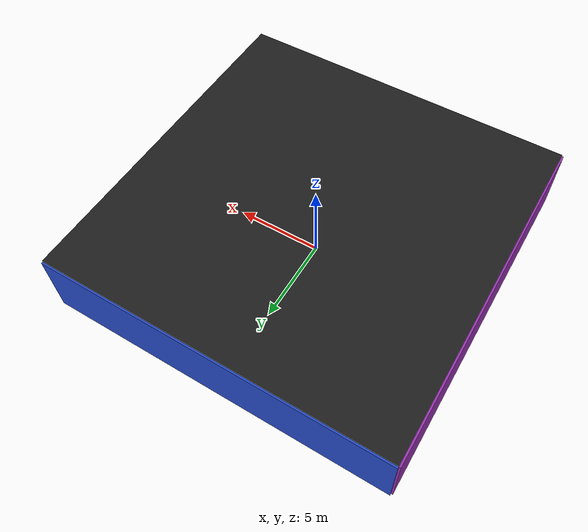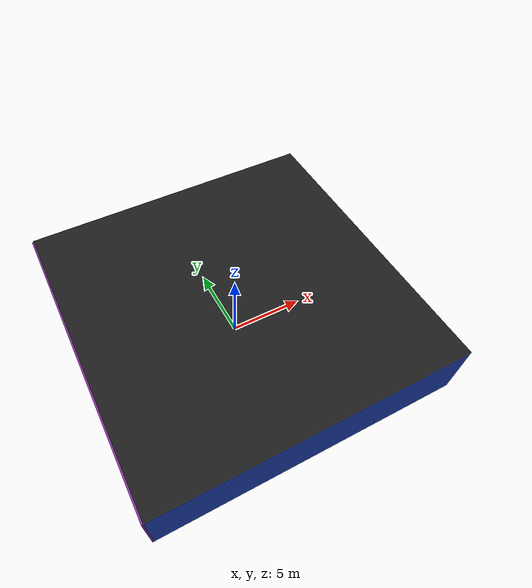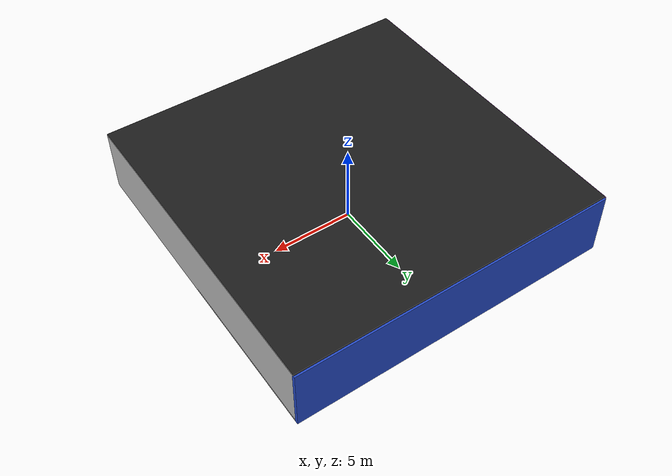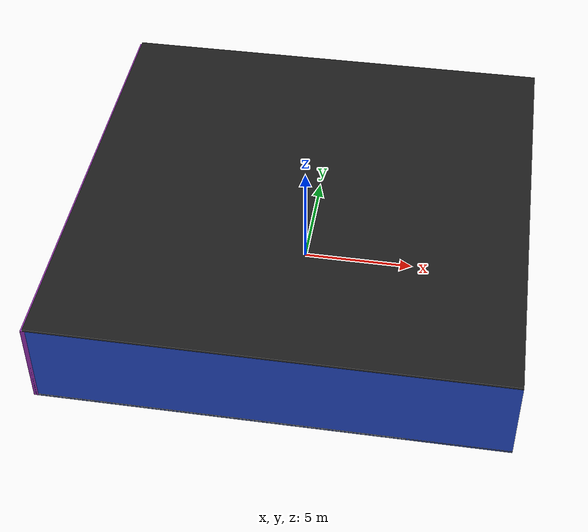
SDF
<sdf version="1.4">
 <world name="default">
  <physics type="ode">
   <max_step_size>0.001</max_step_size>
   <real_time_factor>1</real_time_factor>
   <real_time_update_rate>1000</real_time_update_rate>
   <gravity>0 0 -9.8</gravity>
  </physics>
  <scene><ambient>0.4 0.4 0.4 1</ambient><background>0.7 0.7 0.7 1</background><shadows>1</shadows></scene>
  <model name="Surrounding">
   <static>1</static>
   <link name="Ceiling">
    <collision name="Ceiling_Collision"><geometry><box><size>20 20 0.1</size></box></geometry></collision>
    <visual name="Ceiling_Visual">
     <geometry><box><size>20 20 0.1</size></box></geometry>
     <material>
      <script><uri>file://media/materials/scripts/gazebo.material</uri><name>Gazebo/Black</name></script>
     </material>
    </visual>
    <pose>0 0 4.05 0 0 0</pose>
   </link>
   <link name="Wall_South">
    <collision name="Wall_South_Collision">
     <geometry><box><size>20 0 4</size></box></geometry>
     <pose>0 0 2 0 -0 0</pose>
    </collision>
    <visual name="Wall_South_Visual">
     <pose>0 0 2 0 -0 0</pose>
     <geometry><box><size>20 0 4</size></box></geometry>
     <material>
      <script><uri>file://media/materials/scripts/gazebo.material</uri><name>Gazebo/BlueGlow</name></script>
     </material>
    </visual>
    <velocity_decay><linear>0</linear><angular>0</angular></velocity_decay>
    <pose>0 -10 0 0 -0 0</pose>
   </link>
   <link name="Wall_East">
    <collision name="Wall_21_Collision">
     <geometry><box><size>20 0 4</size></box></geometry>
     <pose>0 0 2 0 -0 0</pose>
    </collision>
    <visual name="Wall_21_Visual">
     <pose>0 0 2 0 -0 0</pose>
     <geometry><box><size>20 0 4</size></box></geometry>
     <material>
      <script><uri>file://media/materials/scripts/gazebo.material</uri><name>Gazebo/JointAnchor</name></script>
     </material>
    </visual>
    <velocity_decay><linear>0</linear><angular>0</angular></velocity_decay>
    <pose>10 0 0 0 -0 1.5708</pose>
   </link>
   <link name="Wall_North">
    <collision name="Wall_22_Collision">
     <geometry><box><size>20 0.2 4</size></box></geometry>
     <pose>0 0 2 0 -0 0</pose>
    </collision>
    <visual name="Wall_22_Visual">
     <pose>0 0 2 0 -0 0</pose>
     <geometry><box><size>20 0.2 4</size></box></geometry>
     <material>
      <script><uri>file://media/materials/scripts/gazebo.material</uri><name>Gazebo/BlueLaser</name></script>
     </material>
    </visual>
    <velocity_decay><linear>0</linear><angular>0</angular></velocity_decay>
    <pose>0 10 0 0 -0 0</pose>
   </link>
   <link name="Wall_West">
    <collision name="Wall_23_Collision">
     <geometry><box><size>20 0.2 4</size></box></geometry>
     <pose>0 0 2 0 -0 0</pose>
    </collision>
    <visual name="Wall_23_Visual">
     <pose>0 0 2 0 -0 0</pose>
     <geometry><box><size>20 0.2 4</size></box></geometry>
     <material>
      <script><uri>file://media/materials/scripts/gazebo.material</uri><name>Gazebo/PurpleGlow</name></script>
     </material>
    </visual>
    <velocity_decay><linear>0</linear><angular>0</angular></velocity_decay>
    <pose>-10 0 0 0 0 -1.5708</pose>
   </link>
   <link name="Ground_link">
    <collision name="collision">
     <pose>0 0 .05 0 -0 0</pose>
     <geometry><box><size>20 20 0.1</size></box></geometry>
    </collision>
    <visual name="visual">
     <pose>0 0 .05 0 -0 0</pose>
     <geometry><box><size>20 20 0.1</size></box></geometry>
     <material>
      <script><uri>file://media/materials/scripts/gazebo.material</uri><name>Gazebo/CloudySky</name></script>
     </material>
    </visual>
   </link>
   <static>1</static>
  </model>
  <spherical_coordinates>
   <surface_model>EARTH_WGS84</surface_model>
   <latitude_deg>0</latitude_deg>
   <longitude_deg>0</longitude_deg>
   <elevation>0</elevation>
   <heading_deg>0</heading_deg>
  </spherical_coordinates>
  <light name="lightball_0" type="diffuse">
   <diffuse>0.8 0.8 0.8 1</diffuse>
   <specular>0.2 0.2 0.2 1</specular>
   <attenuation>
    <range>100</range>
    <constant>0.7</constant>
    <linear>0.01</linear>
    <quadratic>0.001</quadratic>
   </attenuation>
   <direction>-0.5 0.1 -0.9</direction>
   <pose>5.51711124982 -2.75688837504 2.70053795406 0 0 0</pose>
  </light>
  <light name="lightball_1" type="diffuse">
   <diffuse>0.8 0.8 0.8 1</diffuse>
   <specular>0.2 0.2 0.2 1</specular>
   <attenuation>
    <range>100</range>
    <constant>0.7</constant>
    <linear>0.01</linear>
    <quadratic>0.001</quadratic>
   </attenuation>
   <direction>-0.5 0.1 -0.9</direction>
   <pose>7.10319667124 -1.51918532595 2.91423287857 0 0 0</pose>
  </light>
  <light name="lightball_2" type="diffuse">
   <diffuse>0.8 0.8 0.8 1</diffuse>
   <specular>0.2 0.2 0.2 1</specular>
   <attenuation>
    <range>100</range>
    <constant>0.7</constant>
    <linear>0.01</linear>
    <quadratic>0.001</quadratic>
   </attenuation>
   <direction>-0.5 0.1 -0.9</direction>
   <pose>-8.24752479091 5.02646713531 3.87674580837 0 0 0</pose>
  </light>
  <light name="lightball_3" type="diffuse">
   <diffuse>0.8 0.8 0.8 1</diffuse>
   <specular>0.2 0.2 0.2 1</specular>
   <attenuation>
    <range>100</range>
    <constant>0.7</constant>
    <linear>0.01</linear>
    <quadratic>0.001</quadratic>
   </attenuation>
   <direction>-0.5 0.1 -0.9</direction>
   <pose>9.17024450279 -6.93463778316 3.08283792075 0 0 0</pose>
  </light>
  <light name="lightball_4" type="diffuse">
   <diffuse>0.8 0.8 0.8 1</diffuse>
   <specular>0.2 0.2 0.2 1</specular>
   <attenuation>
    <range>100</range>
    <constant>0.7</constant>
    <linear>0.01</linear>
    <quadratic>0.001</quadratic>
   </attenuation>
   <direction>-0.5 0.1 -0.9</direction>
   <pose>4.56919078445 -5.08126278612 2.80256200898 0 0 0</pose>
  </light>
  <light name="lightball_5" type="diffuse">
   <diffuse>0.8 0.8 0.8 1</diffuse>
   <specular>0.2 0.2 0.2 1</specular>
   <attenuation>
    <range>100</range>
    <constant>0.7</constant>
    <linear>0.01</linear>
    <quadratic>0.001</quadratic>
   </attenuation>
   <direction>-0.5 0.1 -0.9</direction>
   <pose>-5.25066868079 -2.29298261803 2.47878182141 0 0 0</pose>
  </light>
  <light name="lightball_6" type="diffuse">
   <diffuse>0.8 0.8 0.8 1</diffuse>
   <specular>0.2 0.2 0.2 1</specular>
   <attenuation>
    <range>100</range>
    <constant>0.7</constant>
    <linear>0.01</linear>
    <quadratic>0.001</quadratic>
   </attenuation>
   <direction>-0.5 0.1 -0.9</direction>
   <pose>-1.91548003084 -3.86201767661 0.857406114907 0 0 0</pose>
  </light>
  <light name="lightball_7" type="diffuse">
   <diffuse>0.8 0.8 0.8 1</diffuse>
   <specular>0.2 0.2 0.2 1</specular>
   <attenuation>
    <range>100</range>
    <constant>0.7</constant>
    <linear>0.01</linear>
    <quadratic>0.001</quadratic>
   </attenuation>
   <direction>-0.5 0.1 -0.9</direction>
   <pose>6.08418955781 8.10045953601 2.21011946949 0 0 0</pose>
  </light>
  <light name="lightball_8" type="diffuse">
   <diffuse>0.8 0.8 0.8 1</diffuse>
   <specular>0.2 0.2 0.2 1</specular>
   <attenuation>
    <range>100</range>
    <constant>0.7</constant>
    <linear>0.01</linear>
    <quadratic>0.001</quadratic>
   </attenuation>
   <direction>-0.5 0.1 -0.9</direction>
   <pose>-0.854245263941 -0.944759416409 1.63458408609 0 0 0</pose>
  </light>
  <light name="lightball_9" type="diffuse">
   <diffuse>0.8 0.8 0.8 1</diffuse>
   <specular>0.2 0.2 0.2 1</specular>
   <attenuation>
    <range>100</range>
    <constant>0.7</constant>
    <linear>0.01</linear>
    <quadratic>0.001</quadratic>
   </attenuation>
   <direction>-0.5 0.1 -0.9</direction>
   <pose>-3.71186562549 4.37705828209 2.95946860714 0 0 0</pose>
  </light>
  <include><uri>model://cabinet</uri><pose>-8.36965391643 -5.09033303035 0 0 0 2.89595547322</pose></include>
  <include><uri>model://cabinet</uri><pose>-4.25689868392 -4.52129582305 0 0 0 2.21194783492</pose></include>
  <include>
   <uri>model://robocup_3Dsim_goal</uri>
   <pose>-2.35080817886 0.655185025191 0 0 0 0.985930793283</pose>
  </include>
  <include>
   <uri>model://robocup_3Dsim_goal</uri>
   <pose>1.80874270516 7.99173162435 0 0 0 1.09867265454</pose>
  </include>
  <include>
   <uri>model://construction_cone</uri>
   <pose>6.61396003864 -7.80164029856 0 0 0 1.47298160769</pose>
  </include>
 </world>
</sdf>

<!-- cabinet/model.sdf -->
<sdf version="1.5">
  <model name="cabinet">
    <static>true</static>
    <link name="cabinet_bottom_plate">
      <inertial>
        <pose>0 0 -1 0 0 0</pose>
        <inertia>
          <ixx>2.050000</ixx>
          <ixy>0</ixy>
          <ixz>0</ixz>
          <iyy>2.050000</iyy>
          <iyz>0</iyz>
          <izz>2.050000</izz>
        </inertia>
        <mass>25.000000</mass>
      </inertial>
      <collision name="cabinet_bottom_plate_geom">
        <pose>0 0 0.010000 0 0 0</pose>
        <geometry>
          <box>
            <size>0.450000 0.450000 0.020000</size>
          </box>
        </geometry>
      </collision>
      <visual name="cabinet_bottom_plate_geom_visual">
        <pose>0 0 0.010000 0 0 0</pose>
        <geometry>
          <box>
            <size>0.450000 0.450000 0.020000</size>
          </box>
        </geometry>
        <material>
          <script>
            <uri>model://media/materials/scripts/gazebo.material</uri>
            <name>Gazebo/Wood</name>
          </script>
        </material>
      </visual>
      <collision name="cabinet_bottom_plate_geom_cabinet_back_plate">
        <pose>0.235000 0 0.510000 0 0 0</pose>
        <geometry>
          <box>
            <size>0.020000 0.450000 1.020000</size>
          </box>
        </geometry>
      </collision>
      <visual name="cabinet_bottom_plate_geom_cabinet_back_plate_visual">
        <pose>0.235000 0 0.510000 0 0 0</pose>
        <geometry>
          <box>
            <size>0.020000 0.450000 1.020000</size>
          </box>
        </geometry>
        <material>
          <script>
            <uri>model://media/materials/scripts/gazebo.material</uri>
            <name>Gazebo/Wood</name>
          </script>
        </material>
      </visual>
      <collision name="cabinet_bottom_plate_geom_cabinet_left_plate">
        <pose>0 0.235000 0.510000 0 0 0</pose>
        <geometry>
          <box>
            <size>0.450000 0.020000 1.020000</size>
          </box>
        </geometry>
      </collision>
      <visual name="cabinet_bottom_plate_geom_cabinet_left_plate_visual">
        <pose>0 0.235000 0.510000 0 0 0</pose>
        <geometry>
          <box>
            <size>0.450000 0.020000 1.020000</size>
          </box>
        </geometry>
        <material>
          <script>
            <uri>model://media/materials/scripts/gazebo.material</uri>
            <name>Gazebo/Wood</name>
          </script>
        </material>
      </visual>
      <collision name="cabinet_bottom_plate_geom_cabinet_middle_plate">
        <pose>0 0 0.510000 0 0 0</pose>
        <geometry>
          <box>
            <size>0.450000 0.450000 0.020000</size>
          </box>
        </geometry>
      </collision>
      <visual name="cabinet_bottom_plate_geom_cabinet_middle_plate_visual">
        <pose>0 0 0.510000 0 0 0</pose>
        <geometry>
          <box>
            <size>0.450000 0.450000 0.020000</size>
          </box>
        </geometry>
        <material>
          <script>
            <uri>model://media/materials/scripts/gazebo.material</uri>
            <name>Gazebo/Wood</name>
          </script>
        </material>
      </visual>
      <collision name="cabinet_bottom_plate_geom_cabinet_right_plate">
        <pose>0 -0.235000 0.510000 0 0 0</pose>
        <geometry>
          <box>
            <size>0.450000 0.020000 1.020000</size>
          </box>
        </geometry>
      </collision>
      <visual name="cabinet_bottom_plate_geom_cabinet_right_plate_visual">
        <pose>0 -0.235000 0.510000 0 0 0</pose>
        <geometry>
          <box>
            <size>0.450000 0.020000 1.020000</size>
          </box>
        </geometry>
        <material>
          <script>
            <uri>model://media/materials/scripts/gazebo.material</uri>
            <name>Gazebo/Wood</name>
          </script>
        </material>
      </visual>
      <collision name="cabinet_bottom_plate_geom_cabinet_top_plate">
        <pose>0 0 1.010000 0 0 0</pose>
        <geometry>
          <box>
            <size>0.450000 0.450000 0.020000</size>
          </box>
        </geometry>
      </collision>
      <visual name="cabinet_bottom_plate_geom_cabinet_top_plate_visual">
        <pose>0 0 1.010000 0 0 0</pose>
        <geometry>
          <box>
            <size>0.450000 0.450000 0.020000</size>
          </box>
        </geometry>
        <material>
          <script>
            <uri>model://media/materials/scripts/gazebo.material</uri>
            <name>Gazebo/Wood</name>
          </script>
        </material>
      </visual>
    </link>
  </model>
</sdf>

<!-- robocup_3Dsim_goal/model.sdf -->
<sdf version="1.5">
  <model name="robocup_3d_goal">
    <static>true</static>
    <link name="left_post">
      <pose>0 1.05 0.45 0 0 0</pose>
      <collision name="collision">
        <geometry>
          <cylinder>
            <radius>0.05</radius>
            <length>0.9</length>
          </cylinder>
        </geometry>
      </collision>
      <visual name="visual">
        <geometry>
          <cylinder>
            <radius>0.05</radius>
            <length>0.9</length>
          </cylinder>
        </geometry>
        <material>
          <script>
            <uri>file://media/materials/scripts/gazebo.material</uri>
            <name>Gazebo/ZincYellow</name>
          </script>
        </material>
      </visual>
    </link>
    <link name="left_support_horiz_lower">
      <pose>0.30 1.05 0.01 0 0 0</pose>
      <collision name="collision">
        <geometry>
          <box>
            <size>0.50 0.02 0.02</size>
          </box>
        </geometry>
      </collision>
      <visual name="visual">
        <geometry>
          <box>
            <size>0.50 0.02 0.02</size>
          </box>
        </geometry>
        <material>
          <script>
            <uri>file://media/materials/scripts/gazebo.material</uri>
            <name>Gazebo/White</name>
          </script>
        </material>
      </visual>
    </link>
    <link name="left_support_horiz_upper">
      <pose>0.30 1.05 0.79 0 0 0</pose>
      <collision name="collision">
        <geometry>
          <box>
            <size>0.50 0.02 0.02</size>
          </box>
        </geometry>
      </collision>
      <visual name="visual">
        <geometry>
          <box>
            <size>0.50 0.02 0.02</size>
          </box>
        </geometry>
        <material>
          <script>
            <uri>file://media/materials/scripts/gazebo.material</uri>
            <name>Gazebo/White</name>
          </script>
        </material>
      </visual>
    </link>
    <link name="left_support_vertical">
      <pose>0.56 1.05 0.4 0 1.5708 0</pose>
      <collision name="collision">
        <geometry>
          <box>
            <size>0.80 0.02 0.02</size>
          </box>
        </geometry>
      </collision>
      <visual name="visual">
        <geometry>
          <box>
            <size>0.80 0.02 0.02</size>
          </box>
        </geometry>
        <material>
          <script>
            <uri>file://media/materials/scripts/gazebo.material</uri>
            <name>Gazebo/White</name>
          </script>
        </material>
      </visual>
    </link>
    <link name="right_support_horiz_lower">
      <pose>0.30 -1.05 0.01 0 0 0</pose>
      <collision name="collision">
        <geometry>
          <box>
            <size>0.50 0.02 0.02</size>
          </box>
        </geometry>
      </collision>
      <visual name="visual">
        <geometry>
          <box>
            <size>0.50 0.02 0.02</size>
          </box>
        </geometry>
        <material>
          <script>
            <uri>file://media/materials/scripts/gazebo.material</uri>
            <name>Gazebo/White</name>
          </script>
        </material>
      </visual>
    </link>
    <link name="right_support_horiz_upper">
      <pose>0.30 -1.05 0.79 0 0 0</pose>
      <collision name="collision">
        <geometry>
          <box>
            <size>0.50 0.02 0.02</size>
          </box>
        </geometry>
      </collision>
      <visual name="visual">
        <geometry>
          <box>
            <size>0.50 0.02 0.02</size>
          </box>
        </geometry>
        <material>
          <script>
            <uri>file://media/materials/scripts/gazebo.material</uri>
            <name>Gazebo/White</name>
          </script>
        </material>
      </visual>
    </link>
    <link name="right_support_vertical">
      <pose>0.56 -1.05 0.4 0 1.5708 0</pose>
      <collision name="collision">
        <geometry>
          <box>
            <size>0.80 0.02 0.02</size>
          </box>
        </geometry>
      </collision>
      <visual name="visual">
        <geometry>
          <box>
            <size>0.80 0.02 0.02</size>
          </box>
        </geometry>
        <material>
          <script>
            <uri>file://media/materials/scripts/gazebo.material</uri>
            <name>Gazebo/White</name>
          </script>
        </material>
      </visual>
    </link>
    <link name="center_support_horiz_lower">
      <pose>0.56 0 0.01 0 1.5708 0</pose>
      <collision name="collision">
        <geometry>
          <box>
            <size>0.02 2.08 0.02</size>
          </box>
        </geometry>
      </collision>
      <visual name="visual">
        <geometry>
          <box>
            <size>0.02 2.08 0.02</size>
          </box>
        </geometry>
        <material>
          <script>
            <uri>file://media/materials/scripts/gazebo.material</uri>
            <name>Gazebo/White</name>
          </script>
        </material>
      </visual>
    </link>
    <link name="center_support_horiz_upper">
      <pose>0.56 0 0.79 0 1.5708 0</pose>
      <collision name="collision">
        <geometry>
          <box>
            <size>0.02 2.08 0.02</size>
          </box>
        </geometry>
      </collision>
      <visual name="visual">
        <geometry>
          <box>
            <size>0.02 2.08 0.02</size>
          </box>
        </geometry>
        <material>
          <script>
            <uri>file://media/materials/scripts/gazebo.material</uri>
            <name>Gazebo/White</name>
          </script>
        </material>
      </visual>
    </link>
    <link name="right_post">
      <pose>0 -1.05 0.45 0 0 0</pose>
      <collision name="collision">
        <geometry>
          <cylinder>
            <radius>0.05</radius>
            <length>0.9</length>
          </cylinder>
        </geometry>
      </collision>
      <visual name="visual">
        <geometry>
          <cylinder>
            <radius>0.05</radius>
            <length>0.9</length>
          </cylinder>
        </geometry>
        <material>
          <script>
            <uri>file://media/materials/scripts/gazebo.material</uri>
            <name>Gazebo/ZincYellow</name>
          </script>
        </material>
      </visual>
    </link>
    <link name="crossbar">
      <pose>0 0 0.85 1.57 1.57 0</pose>
      <collision name="collision">
        <geometry>
          <cylinder>
            <radius>0.05</radius>
            <length>2.0</length>
          </cylinder>
        </geometry>
      </collision>
      <visual name="visual">
        <geometry>
          <cylinder>
            <radius>0.05</radius>
            <length>2.0</length>
          </cylinder>
        </geometry>
        <material>
          <script>
            <uri>file://media/materials/scripts/gazebo.material</uri>
            <name>Gazebo/ZincYellow</name>
          </script>
        </material>
      </visual>
    </link>
    <link name="center_net">
      <pose>0.56 0 0.40 0 0 0</pose>
      <collision name="collision">
        <geometry>
          <box>
            <size>0.01 2.1 0.80</size>
          </box>
        </geometry>
      </collision>
      <visual name="visual">
        <geometry>
          <box>
            <size>0.01 2.1 0.80</size>
          </box>
        </geometry>
        <material>
          <script>
            <uri>model://../model_source/models/robocup09_spl_field/materials/scripts/</uri>
            <uri>model://../model_source/models/robocup09_spl_field/materials/textures/</uri>
            <name>RoboCup/Net</name>
          </script>
        </material>
      </visual>
    </link>
    <link name="left_net">
      <pose>0.30 1.05 0.40 0 0 0</pose>
      <collision name="collision">
        <geometry>
          <box>
            <size>0.50 0.01 0.76</size>
          </box>
        </geometry>
      </collision>
      <visual name="visual">
        <geometry>
          <box>
            <size>0.50 0.01 0.76</size>
          </box>
        </geometry>
        <material>
          <script>
            <uri>model://../model_source/models/robocup09_spl_field/materials/scripts/</uri>
            <uri>model://../model_source/models/robocup09_spl_field/materials/textures/</uri>
            <name>RoboCup/Net</name>
          </script>
        </material>
      </visual>
    </link>
    <link name="right_net">
      <pose>0.30 -1.05 0.40 0 0 0</pose>
      <collision name="collision">
        <geometry>
          <box>
            <size>0.50 0.01 0.76</size>
          </box>
        </geometry>
      </collision>
      <visual name="visual">
        <geometry>
          <box>
            <size>0.50 0.01 0.76</size>
          </box>
        </geometry>
        <material>
          <script>
            <uri>model://../model_source/models/robocup09_spl_field/materials/scripts/</uri>
            <uri>model://../model_source/models/robocup09_spl_field/materials/textures/</uri>
            <name>RoboCup/Net</name>
          </script>
        </material>
      </visual>
    </link>
  </model>
</sdf>

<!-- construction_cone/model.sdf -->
<sdf version="1.5">
  <model name="Construction Cone">
    <link name="link">
      <collision name="collision">
        <geometry>
          <mesh>
            <scale>10 10 10</scale>
            <uri>file://isr-testbed/construction_cone/meshes/construction_cone.dae</uri>
          </mesh>
        </geometry>
      </collision>
      <visual name="visual">
        <geometry>
          <mesh>
            <scale>10 10 10</scale>
            <uri>file://isr-testbed/construction_cone/meshes/construction_cone.dae</uri>
          </mesh>
        </geometry>
      </visual>
    </link>
  </model>
</sdf>
